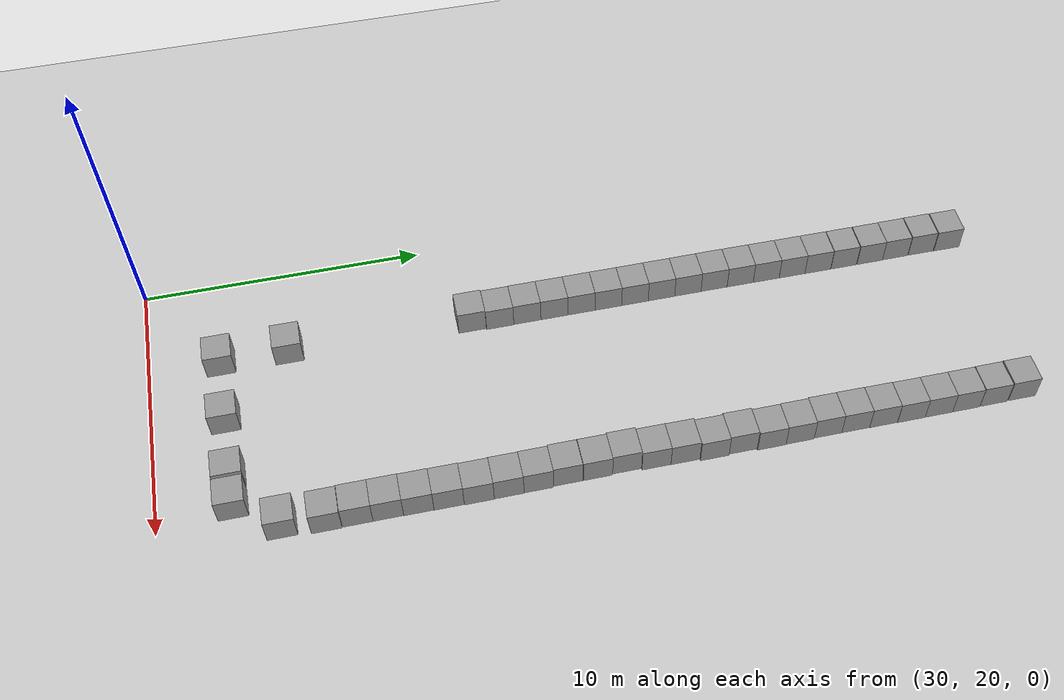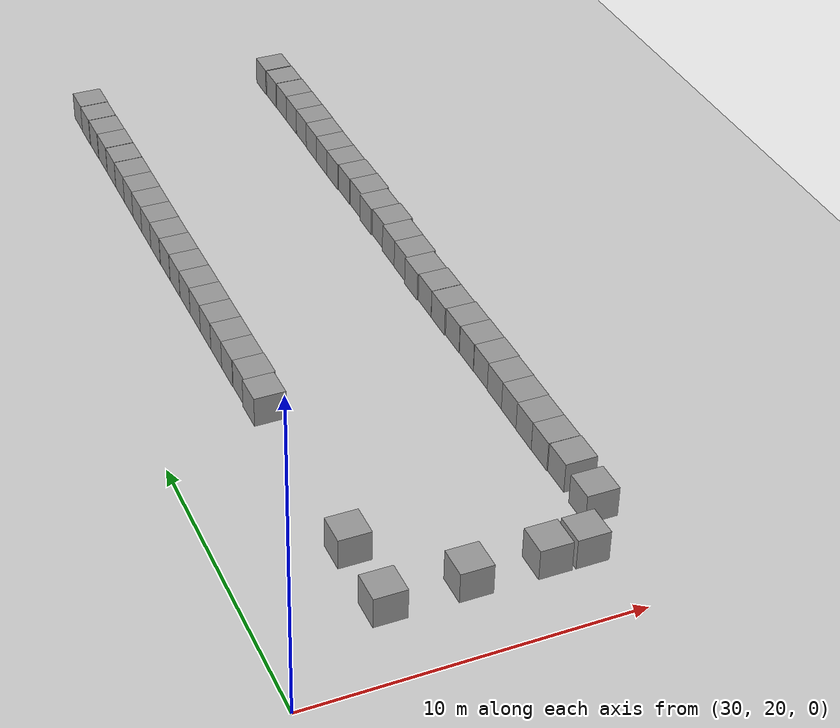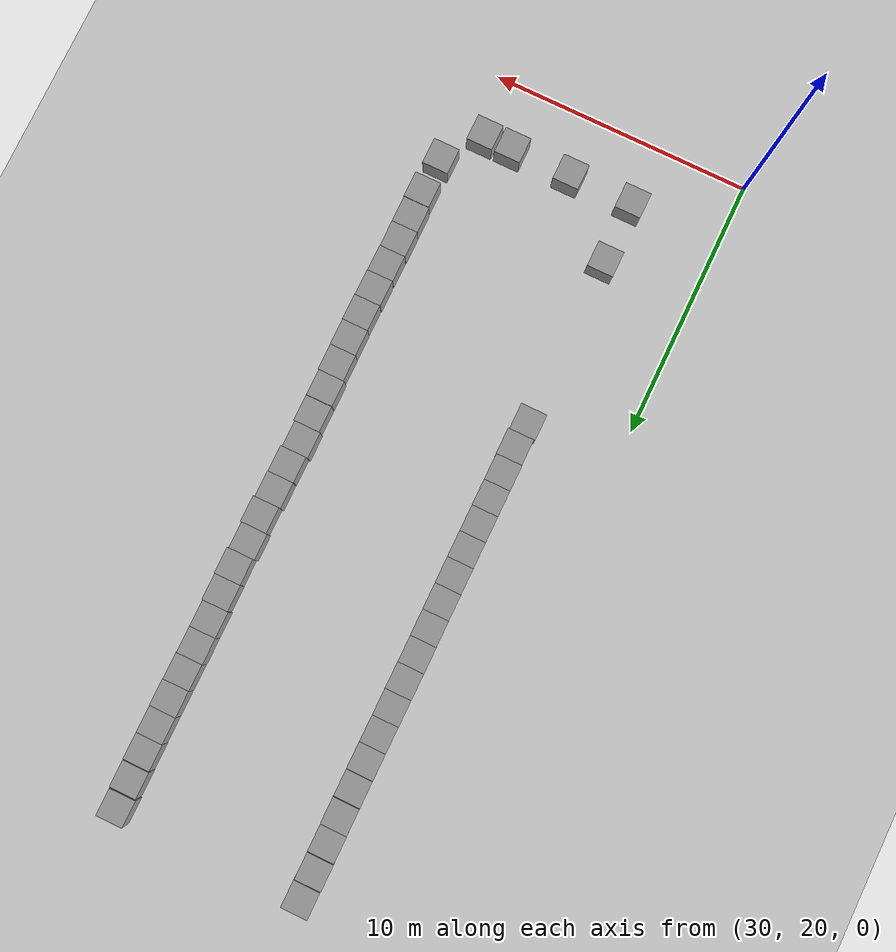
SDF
<sdf version="1.4">
 <world name="default">
  <model name="ground_plane">
   <static>1</static>
   <link name="link">
    <collision name="collision">
     <geometry><plane><normal>0 0 1</normal><size>100 100</size></plane></geometry>
     <surface><friction><ode><mu>100</mu><mu2>50</mu2></ode></friction></surface>
    </collision>
    <visual name="visual">
     <cast_shadows>0</cast_shadows>
     <geometry><plane><normal>0 0 1</normal><size>100 100</size></plane></geometry>
     <material>
      <script><uri>file://media/materials/scripts/gazebo.material</uri><name>Gazebo/Grey</name></script>
     </material>
    </visual>
    <velocity_decay><linear>0</linear><angular>0</angular></velocity_decay>
   </link>
  </model>
  <model name="unit_box_96">
   <pose>33.5045 49.5049 0.5 0 -0 0</pose>
   <link name="link">
    <inertial>
     <mass>1</mass>
     <inertia><ixx>1</ixx><ixy>0</ixy><ixz>0</ixz><iyy>1</iyy><iyz>0</iyz><izz>1</izz></inertia>
    </inertial>
    <collision name="collision"><geometry><box><size>1 1 1</size></box></geometry></collision>
    <visual name="visual">
     <geometry><box><size>1 1 1</size></box></geometry>
     <material>
      <script><uri>file://media/materials/scripts/gazebo.material</uri><name>Gazebo/Grey</name></script>
     </material>
    </visual>
    <velocity_decay><linear>0</linear><angular>0</angular></velocity_decay>
   </link>
   <static>0</static>
  </model>
  <model name="unit_box_97">
   <pose>40.5027 49.5047 0.5 0 -0 0</pose>
   <link name="link">
    <inertial>
     <mass>1</mass>
     <inertia><ixx>1</ixx><ixy>0</ixy><ixz>0</ixz><iyy>1</iyy><iyz>0</iyz><izz>1</izz></inertia>
    </inertial>
    <collision name="collision"><geometry><box><size>1 1 1</size></box></geometry></collision>
    <visual name="visual">
     <geometry><box><size>1 1 1</size></box></geometry>
     <material>
      <script><uri>file://media/materials/scripts/gazebo.material</uri><name>Gazebo/Grey</name></script>
     </material>
    </visual>
    <velocity_decay><linear>0</linear><angular>0</angular></velocity_decay>
   </link>
   <static>0</static>
  </model>
  <model name="unit_box_98">
   <pose>33.501 22.5015 0.5 0 -0 0</pose>
   <link name="link">
    <inertial>
     <mass>1</mass>
     <inertia><ixx>1</ixx><ixy>0</ixy><ixz>0</ixz><iyy>1</iyy><iyz>0</iyz><izz>1</izz></inertia>
    </inertial>
    <collision name="collision"><geometry><box><size>1 1 1</size></box></geometry></collision>
    <visual name="visual">
     <geometry><box><size>1 1 1</size></box></geometry>
     <material>
      <script><uri>file://media/materials/scripts/gazebo.material</uri><name>Gazebo/Grey</name></script>
     </material>
    </visual>
    <velocity_decay><linear>0</linear><angular>0</angular></velocity_decay>
   </link>
   <static>0</static>
  </model>
  <model name="unit_box_100">
   <pose>39.3953 22.5045 0.5 0 -0 0</pose>
   <link name="link">
    <inertial>
     <mass>1</mass>
     <inertia><ixx>1</ixx><ixy>0</ixy><ixz>0</ixz><iyy>1</iyy><iyz>0</iyz><izz>1</izz></inertia>
    </inertial>
    <collision name="collision"><geometry><box><size>1 1 1</size></box></geometry></collision>
    <visual name="visual">
     <geometry><box><size>1 1 1</size></box></geometry>
     <material>
      <script><uri>file://media/materials/scripts/gazebo.material</uri><name>Gazebo/Grey</name></script>
     </material>
    </visual>
    <velocity_decay><linear>0</linear><angular>0</angular></velocity_decay>
   </link>
   <static>0</static>
  </model>
  <model name="unit_box_101">
   <pose>38.2849 22.5064 0.5 0 -0 0</pose>
   <link name="link">
    <inertial>
     <mass>1</mass>
     <inertia><ixx>1</ixx><ixy>0</ixy><ixz>0</ixz><iyy>1</iyy><iyz>0</iyz><izz>1</izz></inertia>
    </inertial>
    <collision name="collision"><geometry><box><size>1 1 1</size></box></geometry></collision>
    <visual name="visual">
     <geometry><box><size>1 1 1</size></box></geometry>
     <material>
      <script><uri>file://media/materials/scripts/gazebo.material</uri><name>Gazebo/Grey</name></script>
     </material>
    </visual>
    <velocity_decay><linear>0</linear><angular>0</angular></velocity_decay>
   </link>
   <static>0</static>
  </model>
  <model name="unit_box_103">
   <pose>35.9628 22.5022 0.5 0 -0 0</pose>
   <link name="link">
    <inertial>
     <mass>1</mass>
     <inertia><ixx>1</ixx><ixy>0</ixy><ixz>0</ixz><iyy>1</iyy><iyz>0</iyz><izz>1</izz></inertia>
    </inertial>
    <collision name="collision"><geometry><box><size>1 1 1</size></box></geometry></collision>
    <visual name="visual">
     <geometry><box><size>1 1 1</size></box></geometry>
     <material>
      <script><uri>file://media/materials/scripts/gazebo.material</uri><name>Gazebo/Grey</name></script>
     </material>
    </visual>
    <velocity_decay><linear>0</linear><angular>0</angular></velocity_decay>
   </link>
   <static>0</static>
  </model>
  <model name="unit_box_107">
   <pose>33.4934 48.4846 0.5 0 -0 0</pose>
   <link name="link">
    <inertial>
     <mass>1</mass>
     <inertia><ixx>1</ixx><ixy>0</ixy><ixz>0</ixz><iyy>1</iyy><iyz>0</iyz><izz>1</izz></inertia>
    </inertial>
    <collision name="collision"><geometry><box><size>1 1 1</size></box></geometry></collision>
    <visual name="visual">
     <geometry><box><size>1 1 1</size></box></geometry>
     <material>
      <script><uri>file://media/materials/scripts/gazebo.material</uri><name>Gazebo/Grey</name></script>
     </material>
    </visual>
    <velocity_decay><linear>0</linear><angular>0</angular></velocity_decay>
   </link>
   <static>0</static>
  </model>
  <model name="unit_box_108">
   <pose>33.5012 47.465 0.5 0 -0 0</pose>
   <link name="link">
    <inertial>
     <mass>1</mass>
     <inertia><ixx>1</ixx><ixy>0</ixy><ixz>0</ixz><iyy>1</iyy><iyz>0</iyz><izz>1</izz></inertia>
    </inertial>
    <collision name="collision"><geometry><box><size>1 1 1</size></box></geometry></collision>
    <visual name="visual">
     <geometry><box><size>1 1 1</size></box></geometry>
     <material>
      <script><uri>file://media/materials/scripts/gazebo.material</uri><name>Gazebo/Grey</name></script>
     </material>
    </visual>
    <velocity_decay><linear>0</linear><angular>0</angular></velocity_decay>
   </link>
   <static>0</static>
  </model>
  <model name="unit_box_109">
   <pose>33.5117 46.463 0.5 0 -0 0</pose>
   <link name="link">
    <inertial>
     <mass>1</mass>
     <inertia><ixx>1</ixx><ixy>0</ixy><ixz>0</ixz><iyy>1</iyy><iyz>0</iyz><izz>1</izz></inertia>
    </inertial>
    <collision name="collision"><geometry><box><size>1 1 1</size></box></geometry></collision>
    <visual name="visual">
     <geometry><box><size>1 1 1</size></box></geometry>
     <material>
      <script><uri>file://media/materials/scripts/gazebo.material</uri><name>Gazebo/Grey</name></script>
     </material>
    </visual>
    <velocity_decay><linear>0</linear><angular>0</angular></velocity_decay>
   </link>
   <static>0</static>
  </model>
  <model name="unit_box_110">
   <pose>33.5118 45.44 0.5 0 -0 0</pose>
   <link name="link">
    <inertial>
     <mass>1</mass>
     <inertia><ixx>1</ixx><ixy>0</ixy><ixz>0</ixz><iyy>1</iyy><iyz>0</iyz><izz>1</izz></inertia>
    </inertial>
    <collision name="collision"><geometry><box><size>1 1 1</size></box></geometry></collision>
    <visual name="visual">
     <geometry><box><size>1 1 1</size></box></geometry>
     <material>
      <script><uri>file://media/materials/scripts/gazebo.material</uri><name>Gazebo/Grey</name></script>
     </material>
    </visual>
    <velocity_decay><linear>0</linear><angular>0</angular></velocity_decay>
   </link>
   <static>0</static>
  </model>
  <model name="unit_box_111">
   <pose>33.5126 44.4266 0.5 0 0 -3.6e-05</pose>
   <link name="link">
    <inertial>
     <mass>1</mass>
     <inertia><ixx>1</ixx><ixy>0</ixy><ixz>0</ixz><iyy>1</iyy><iyz>0</iyz><izz>1</izz></inertia>
    </inertial>
    <collision name="collision"><geometry><box><size>1 1 1</size></box></geometry></collision>
    <visual name="visual">
     <geometry><box><size>1 1 1</size></box></geometry>
     <material>
      <script><uri>file://media/materials/scripts/gazebo.material</uri><name>Gazebo/Grey</name></script>
     </material>
    </visual>
    <velocity_decay><linear>0</linear><angular>0</angular></velocity_decay>
   </link>
   <static>0</static>
  </model>
  <model name="unit_box_112">
   <pose>33.5104 43.4266 0.5 0 0 -6e-06</pose>
   <link name="link">
    <inertial>
     <mass>1</mass>
     <inertia><ixx>1</ixx><ixy>0</ixy><ixz>0</ixz><iyy>1</iyy><iyz>0</iyz><izz>1</izz></inertia>
    </inertial>
    <collision name="collision"><geometry><box><size>1 1 1</size></box></geometry></collision>
    <visual name="visual">
     <geometry><box><size>1 1 1</size></box></geometry>
     <material>
      <script><uri>file://media/materials/scripts/gazebo.material</uri><name>Gazebo/Grey</name></script>
     </material>
    </visual>
    <velocity_decay><linear>0</linear><angular>0</angular></velocity_decay>
   </link>
   <static>0</static>
  </model>
  <model name="unit_box_113">
   <pose>33.5063 42.4266 0.5 0 -0 2e-06</pose>
   <link name="link">
    <inertial>
     <mass>1</mass>
     <inertia><ixx>1</ixx><ixy>0</ixy><ixz>0</ixz><iyy>1</iyy><iyz>0</iyz><izz>1</izz></inertia>
    </inertial>
    <collision name="collision"><geometry><box><size>1 1 1</size></box></geometry></collision>
    <visual name="visual">
     <geometry><box><size>1 1 1</size></box></geometry>
     <material>
      <script><uri>file://media/materials/scripts/gazebo.material</uri><name>Gazebo/Grey</name></script>
     </material>
    </visual>
    <velocity_decay><linear>0</linear><angular>0</angular></velocity_decay>
   </link>
   <static>0</static>
  </model>
  <model name="unit_box_114">
   <pose>33.5046 41.4265 0.5 0 -0 2.8e-05</pose>
   <link name="link">
    <inertial>
     <mass>1</mass>
     <inertia><ixx>1</ixx><ixy>0</ixy><ixz>0</ixz><iyy>1</iyy><iyz>0</iyz><izz>1</izz></inertia>
    </inertial>
    <collision name="collision"><geometry><box><size>1 1 1</size></box></geometry></collision>
    <visual name="visual">
     <geometry><box><size>1 1 1</size></box></geometry>
     <material>
      <script><uri>file://media/materials/scripts/gazebo.material</uri><name>Gazebo/Grey</name></script>
     </material>
    </visual>
    <velocity_decay><linear>0</linear><angular>0</angular></velocity_decay>
   </link>
   <static>0</static>
  </model>
  <model name="unit_box_115">
   <pose>33.5012 40.4265 0.5 0 -0 5.9e-05</pose>
   <link name="link">
    <inertial>
     <mass>1</mass>
     <inertia><ixx>1</ixx><ixy>0</ixy><ixz>0</ixz><iyy>1</iyy><iyz>0</iyz><izz>1</izz></inertia>
    </inertial>
    <collision name="collision"><geometry><box><size>1 1 1</size></box></geometry></collision>
    <visual name="visual">
     <geometry><box><size>1 1 1</size></box></geometry>
     <material>
      <script><uri>file://media/materials/scripts/gazebo.material</uri><name>Gazebo/Grey</name></script>
     </material>
    </visual>
    <velocity_decay><linear>0</linear><angular>0</angular></velocity_decay>
   </link>
   <static>0</static>
  </model>
  <model name="unit_box_116">
   <pose>33.5075 39.4265 0.5 0 -0 5.4e-05</pose>
   <link name="link">
    <inertial>
     <mass>1</mass>
     <inertia><ixx>1</ixx><ixy>0</ixy><ixz>0</ixz><iyy>1</iyy><iyz>0</iyz><izz>1</izz></inertia>
    </inertial>
    <collision name="collision"><geometry><box><size>1 1 1</size></box></geometry></collision>
    <visual name="visual">
     <geometry><box><size>1 1 1</size></box></geometry>
     <material>
      <script><uri>file://media/materials/scripts/gazebo.material</uri><name>Gazebo/Grey</name></script>
     </material>
    </visual>
    <velocity_decay><linear>0</linear><angular>0</angular></velocity_decay>
   </link>
   <static>0</static>
  </model>
  <model name="unit_box_117">
   <pose>33.5119 38.4265 0.5 0 -0 5.7e-05</pose>
   <link name="link">
    <inertial>
     <mass>1</mass>
     <inertia><ixx>1</ixx><ixy>0</ixy><ixz>0</ixz><iyy>1</iyy><iyz>0</iyz><izz>1</izz></inertia>
    </inertial>
    <collision name="collision"><geometry><box><size>1 1 1</size></box></geometry></collision>
    <visual name="visual">
     <geometry><box><size>1 1 1</size></box></geometry>
     <material>
      <script><uri>file://media/materials/scripts/gazebo.material</uri><name>Gazebo/Grey</name></script>
     </material>
    </visual>
    <velocity_decay><linear>0</linear><angular>0</angular></velocity_decay>
   </link>
   <static>0</static>
  </model>
  <model name="unit_box_118">
   <pose>33.5168 37.4265 0.5 0 -0 5.7e-05</pose>
   <link name="link">
    <inertial>
     <mass>1</mass>
     <inertia><ixx>1</ixx><ixy>0</ixy><ixz>0</ixz><iyy>1</iyy><iyz>0</iyz><izz>1</izz></inertia>
    </inertial>
    <collision name="collision"><geometry><box><size>1 1 1</size></box></geometry></collision>
    <visual name="visual">
     <geometry><box><size>1 1 1</size></box></geometry>
     <material>
      <script><uri>file://media/materials/scripts/gazebo.material</uri><name>Gazebo/Grey</name></script>
     </material>
    </visual>
    <velocity_decay><linear>0</linear><angular>0</angular></velocity_decay>
   </link>
   <static>0</static>
  </model>
  <model name="unit_box_119">
   <pose>33.5186 36.4265 0.5 0 -0 5.8e-05</pose>
   <link name="link">
    <inertial>
     <mass>1</mass>
     <inertia><ixx>1</ixx><ixy>0</ixy><ixz>0</ixz><iyy>1</iyy><iyz>0</iyz><izz>1</izz></inertia>
    </inertial>
    <collision name="collision"><geometry><box><size>1 1 1</size></box></geometry></collision>
    <visual name="visual">
     <geometry><box><size>1 1 1</size></box></geometry>
     <material>
      <script><uri>file://media/materials/scripts/gazebo.material</uri><name>Gazebo/Grey</name></script>
     </material>
    </visual>
    <velocity_decay><linear>0</linear><angular>0</angular></velocity_decay>
   </link>
   <static>0</static>
  </model>
  <model name="unit_box_120">
   <pose>33.5183 35.4265 0.5 0 -0 4.7e-05</pose>
   <link name="link">
    <inertial>
     <mass>1</mass>
     <inertia><ixx>1</ixx><ixy>0</ixy><ixz>0</ixz><iyy>1</iyy><iyz>0</iyz><izz>1</izz></inertia>
    </inertial>
    <collision name="collision"><geometry><box><size>1 1 1</size></box></geometry></collision>
    <visual name="visual">
     <geometry><box><size>1 1 1</size></box></geometry>
     <material>
      <script><uri>file://media/materials/scripts/gazebo.material</uri><name>Gazebo/Grey</name></script>
     </material>
    </visual>
    <velocity_decay><linear>0</linear><angular>0</angular></velocity_decay>
   </link>
   <static>0</static>
  </model>
  <model name="unit_box_121">
   <pose>33.5208 34.4264 0.5 0 -0 1.3e-05</pose>
   <link name="link">
    <inertial>
     <mass>1</mass>
     <inertia><ixx>1</ixx><ixy>0</ixy><ixz>0</ixz><iyy>1</iyy><iyz>0</iyz><izz>1</izz></inertia>
    </inertial>
    <collision name="collision"><geometry><box><size>1 1 1</size></box></geometry></collision>
    <visual name="visual">
     <geometry><box><size>1 1 1</size></box></geometry>
     <material>
      <script><uri>file://media/materials/scripts/gazebo.material</uri><name>Gazebo/Grey</name></script>
     </material>
    </visual>
    <velocity_decay><linear>0</linear><angular>0</angular></velocity_decay>
   </link>
   <static>0</static>
  </model>
  <model name="unit_box_122">
   <pose>33.5203 33.4264 0.5 0 -0 1e-06</pose>
   <link name="link">
    <inertial>
     <mass>1</mass>
     <inertia><ixx>1</ixx><ixy>0</ixy><ixz>0</ixz><iyy>1</iyy><iyz>0</iyz><izz>1</izz></inertia>
    </inertial>
    <collision name="collision"><geometry><box><size>1 1 1</size></box></geometry></collision>
    <visual name="visual">
     <geometry><box><size>1 1 1</size></box></geometry>
     <material>
      <script><uri>file://media/materials/scripts/gazebo.material</uri><name>Gazebo/Grey</name></script>
     </material>
    </visual>
    <velocity_decay><linear>0</linear><angular>0</angular></velocity_decay>
   </link>
   <static>0</static>
  </model>
  <model name="unit_box_123">
   <pose>33.5343 32.4264 0.5 0 -0 6e-06</pose>
   <link name="link">
    <inertial>
     <mass>1</mass>
     <inertia><ixx>1</ixx><ixy>0</ixy><ixz>0</ixz><iyy>1</iyy><iyz>0</iyz><izz>1</izz></inertia>
    </inertial>
    <collision name="collision"><geometry><box><size>1 1 1</size></box></geometry></collision>
    <visual name="visual">
     <geometry><box><size>1 1 1</size></box></geometry>
     <material>
      <script><uri>file://media/materials/scripts/gazebo.material</uri><name>Gazebo/Grey</name></script>
     </material>
    </visual>
    <velocity_decay><linear>0</linear><angular>0</angular></velocity_decay>
   </link>
   <static>0</static>
  </model>
  <model name="unit_box_124">
   <pose>33.4872 31.4264 0.5 0 -0 -3e-06</pose>
   <link name="link">
    <inertial>
     <mass>1</mass>
     <inertia><ixx>1</ixx><ixy>0</ixy><ixz>0</ixz><iyy>1</iyy><iyz>0</iyz><izz>1</izz></inertia>
    </inertial>
    <collision name="collision"><geometry><box><size>1 1 1</size></box></geometry></collision>
    <visual name="visual">
     <geometry><box><size>1 1 1</size></box></geometry>
     <material>
      <script><uri>file://media/materials/scripts/gazebo.material</uri><name>Gazebo/Grey</name></script>
     </material>
    </visual>
    <velocity_decay><linear>0</linear><angular>0</angular></velocity_decay>
   </link>
   <static>0</static>
  </model>
  <model name="unit_box_130">
   <pose>33.4872 24.8965 0.5 0 -0 0</pose>
   <link name="link">
    <inertial>
     <mass>1</mass>
     <inertia><ixx>1</ixx><ixy>0</ixy><ixz>0</ixz><iyy>1</iyy><iyz>0</iyz><izz>1</izz></inertia>
    </inertial>
    <collision name="collision"><geometry><box><size>1 1 1</size></box></geometry></collision>
    <visual name="visual">
     <geometry><box><size>1 1 1</size></box></geometry>
     <material>
      <script><uri>file://media/materials/scripts/gazebo.material</uri><name>Gazebo/Grey</name></script>
     </material>
    </visual>
    <velocity_decay><linear>0</linear><angular>0</angular></velocity_decay>
   </link>
   <static>0</static>
  </model>
  <model name="unit_box_132">
   <pose>40.5174 48.4613 0.5 0 -0 0</pose>
   <link name="link">
    <inertial>
     <mass>1</mass>
     <inertia><ixx>1</ixx><ixy>0</ixy><ixz>0</ixz><iyy>1</iyy><iyz>0</iyz><izz>1</izz></inertia>
    </inertial>
    <collision name="collision"><geometry><box><size>1 1 1</size></box></geometry></collision>
    <visual name="visual">
     <geometry><box><size>1 1 1</size></box></geometry>
     <material>
      <script><uri>file://media/materials/scripts/gazebo.material</uri><name>Gazebo/Grey</name></script>
     </material>
    </visual>
    <velocity_decay><linear>0</linear><angular>0</angular></velocity_decay>
   </link>
   <static>0</static>
  </model>
  <model name="unit_box_133">
   <pose>40.5299 47.4437 0.5 0 -0 -0.000325</pose>
   <link name="link">
    <inertial>
     <mass>1</mass>
     <inertia><ixx>1</ixx><ixy>0</ixy><ixz>0</ixz><iyy>1</iyy><iyz>0</iyz><izz>1</izz></inertia>
    </inertial>
    <collision name="collision"><geometry><box><size>1 1 1</size></box></geometry></collision>
    <visual name="visual">
     <geometry><box><size>1 1 1</size></box></geometry>
     <material>
      <script><uri>file://media/materials/scripts/gazebo.material</uri><name>Gazebo/Grey</name></script>
     </material>
    </visual>
    <velocity_decay><linear>0</linear><angular>0</angular></velocity_decay>
   </link>
   <static>0</static>
  </model>
  <model name="unit_box_134">
   <pose>40.5325 46.4437 0.5 0 -0 -0.000369</pose>
   <link name="link">
    <inertial>
     <mass>1</mass>
     <inertia><ixx>1</ixx><ixy>0</ixy><ixz>0</ixz><iyy>1</iyy><iyz>0</iyz><izz>1</izz></inertia>
    </inertial>
    <collision name="collision"><geometry><box><size>1 1 1</size></box></geometry></collision>
    <visual name="visual">
     <geometry><box><size>1 1 1</size></box></geometry>
     <material>
      <script><uri>file://media/materials/scripts/gazebo.material</uri><name>Gazebo/Grey</name></script>
     </material>
    </visual>
    <velocity_decay><linear>0</linear><angular>0</angular></velocity_decay>
   </link>
   <static>0</static>
  </model>
  <model name="unit_box_135">
   <pose>40.5358 45.4437 0.5 -0 -0 -0.00037</pose>
   <link name="link">
    <inertial>
     <mass>1</mass>
     <inertia><ixx>1</ixx><ixy>0</ixy><ixz>0</ixz><iyy>1</iyy><iyz>0</iyz><izz>1</izz></inertia>
    </inertial>
    <collision name="collision"><geometry><box><size>1 1 1</size></box></geometry></collision>
    <visual name="visual">
     <geometry><box><size>1 1 1</size></box></geometry>
     <material>
      <script><uri>file://media/materials/scripts/gazebo.material</uri><name>Gazebo/Grey</name></script>
     </material>
    </visual>
    <velocity_decay><linear>0</linear><angular>0</angular></velocity_decay>
   </link>
   <static>0</static>
  </model>
  <model name="unit_box_136">
   <pose>40.5245 44.4437 0.5 -0 -0 -0.000372</pose>
   <link name="link">
    <inertial>
     <mass>1</mass>
     <inertia><ixx>1</ixx><ixy>0</ixy><ixz>0</ixz><iyy>1</iyy><iyz>0</iyz><izz>1</izz></inertia>
    </inertial>
    <collision name="collision"><geometry><box><size>1 1 1</size></box></geometry></collision>
    <visual name="visual">
     <geometry><box><size>1 1 1</size></box></geometry>
     <material>
      <script><uri>file://media/materials/scripts/gazebo.material</uri><name>Gazebo/Grey</name></script>
     </material>
    </visual>
    <velocity_decay><linear>0</linear><angular>0</angular></velocity_decay>
   </link>
   <static>0</static>
  </model>
  <model name="unit_box_137">
   <pose>40.517 43.4437 0.5 0 -0 -0.000375</pose>
   <link name="link">
    <inertial>
     <mass>1</mass>
     <inertia><ixx>1</ixx><ixy>0</ixy><ixz>0</ixz><iyy>1</iyy><iyz>0</iyz><izz>1</izz></inertia>
    </inertial>
    <collision name="collision"><geometry><box><size>1 1 1</size></box></geometry></collision>
    <visual name="visual">
     <geometry><box><size>1 1 1</size></box></geometry>
     <material>
      <script><uri>file://media/materials/scripts/gazebo.material</uri><name>Gazebo/Grey</name></script>
     </material>
    </visual>
    <velocity_decay><linear>0</linear><angular>0</angular></velocity_decay>
   </link>
   <static>0</static>
  </model>
  <model name="unit_box_138">
   <pose>40.5189 42.4437 0.5 0 0 -0.000375</pose>
   <link name="link">
    <inertial>
     <mass>1</mass>
     <inertia><ixx>1</ixx><ixy>0</ixy><ixz>0</ixz><iyy>1</iyy><iyz>0</iyz><izz>1</izz></inertia>
    </inertial>
    <collision name="collision"><geometry><box><size>1 1 1</size></box></geometry></collision>
    <visual name="visual">
     <geometry><box><size>1 1 1</size></box></geometry>
     <material>
      <script><uri>file://media/materials/scripts/gazebo.material</uri><name>Gazebo/Grey</name></script>
     </material>
    </visual>
    <velocity_decay><linear>0</linear><angular>0</angular></velocity_decay>
   </link>
   <static>0</static>
  </model>
  <model name="unit_box_139">
   <pose>40.5496 41.4437 0.5 0 0 -0.000382</pose>
   <link name="link">
    <inertial>
     <mass>1</mass>
     <inertia><ixx>1</ixx><ixy>0</ixy><ixz>0</ixz><iyy>1</iyy><iyz>0</iyz><izz>1</izz></inertia>
    </inertial>
    <collision name="collision"><geometry><box><size>1 1 1</size></box></geometry></collision>
    <visual name="visual">
     <geometry><box><size>1 1 1</size></box></geometry>
     <material>
      <script><uri>file://media/materials/scripts/gazebo.material</uri><name>Gazebo/Grey</name></script>
     </material>
    </visual>
    <velocity_decay><linear>0</linear><angular>0</angular></velocity_decay>
   </link>
   <static>0</static>
  </model>
  <model name="unit_box_140">
   <pose>40.5659 40.4437 0.5 0 0 -0.000398</pose>
   <link name="link">
    <inertial>
     <mass>1</mass>
     <inertia><ixx>1</ixx><ixy>0</ixy><ixz>0</ixz><iyy>1</iyy><iyz>0</iyz><izz>1</izz></inertia>
    </inertial>
    <collision name="collision"><geometry><box><size>1 1 1</size></box></geometry></collision>
    <visual name="visual">
     <geometry><box><size>1 1 1</size></box></geometry>
     <material>
      <script><uri>file://media/materials/scripts/gazebo.material</uri><name>Gazebo/Grey</name></script>
     </material>
    </visual>
    <velocity_decay><linear>0</linear><angular>0</angular></velocity_decay>
   </link>
   <static>0</static>
  </model>
  <model name="unit_box_141">
   <pose>40.5117 39.4437 0.5 0 0 -0.000402</pose>
   <link name="link">
    <inertial>
     <mass>1</mass>
     <inertia><ixx>1</ixx><ixy>0</ixy><ixz>0</ixz><iyy>1</iyy><iyz>0</iyz><izz>1</izz></inertia>
    </inertial>
    <collision name="collision"><geometry><box><size>1 1 1</size></box></geometry></collision>
    <visual name="visual">
     <geometry><box><size>1 1 1</size></box></geometry>
     <material>
      <script><uri>file://media/materials/scripts/gazebo.material</uri><name>Gazebo/Grey</name></script>
     </material>
    </visual>
    <velocity_decay><linear>0</linear><angular>0</angular></velocity_decay>
   </link>
   <static>0</static>
  </model>
  <model name="unit_box_142">
   <pose>40.5549 38.4436 0.5 -0 -0 -0.000479</pose>
   <link name="link">
    <inertial>
     <mass>1</mass>
     <inertia><ixx>1</ixx><ixy>0</ixy><ixz>0</ixz><iyy>1</iyy><iyz>0</iyz><izz>1</izz></inertia>
    </inertial>
    <collision name="collision"><geometry><box><size>1 1 1</size></box></geometry></collision>
    <visual name="visual">
     <geometry><box><size>1 1 1</size></box></geometry>
     <material>
      <script><uri>file://media/materials/scripts/gazebo.material</uri><name>Gazebo/Grey</name></script>
     </material>
    </visual>
    <velocity_decay><linear>0</linear><angular>0</angular></velocity_decay>
   </link>
   <static>0</static>
  </model>
  <model name="unit_box_143">
   <pose>40.4915 37.4436 0.5 0 0 -0.000487</pose>
   <link name="link">
    <inertial>
     <mass>1</mass>
     <inertia><ixx>1</ixx><ixy>0</ixy><ixz>0</ixz><iyy>1</iyy><iyz>0</iyz><izz>1</izz></inertia>
    </inertial>
    <collision name="collision"><geometry><box><size>1 1 1</size></box></geometry></collision>
    <visual name="visual">
     <geometry><box><size>1 1 1</size></box></geometry>
     <material>
      <script><uri>file://media/materials/scripts/gazebo.material</uri><name>Gazebo/Grey</name></script>
     </material>
    </visual>
    <velocity_decay><linear>0</linear><angular>0</angular></velocity_decay>
   </link>
   <static>0</static>
  </model>
  <model name="unit_box_144">
   <pose>40.4837 36.4436 0.5 0 0 -0.000488</pose>
   <link name="link">
    <inertial>
     <mass>1</mass>
     <inertia><ixx>1</ixx><ixy>0</ixy><ixz>0</ixz><iyy>1</iyy><iyz>0</iyz><izz>1</izz></inertia>
    </inertial>
    <collision name="collision"><geometry><box><size>1 1 1</size></box></geometry></collision>
    <visual name="visual">
     <geometry><box><size>1 1 1</size></box></geometry>
     <material>
      <script><uri>file://media/materials/scripts/gazebo.material</uri><name>Gazebo/Grey</name></script>
     </material>
    </visual>
    <velocity_decay><linear>0</linear><angular>0</angular></velocity_decay>
   </link>
   <static>0</static>
  </model>
  <model name="unit_box_145">
   <pose>40.4218 35.4437 0.5 0 0 -0.000522</pose>
   <link name="link">
    <inertial>
     <mass>1</mass>
     <inertia><ixx>1</ixx><ixy>0</ixy><ixz>0</ixz><iyy>1</iyy><iyz>0</iyz><izz>1</izz></inertia>
    </inertial>
    <collision name="collision"><geometry><box><size>1 1 1</size></box></geometry></collision>
    <visual name="visual">
     <geometry><box><size>1 1 1</size></box></geometry>
     <material>
      <script><uri>file://media/materials/scripts/gazebo.material</uri><name>Gazebo/Grey</name></script>
     </material>
    </visual>
    <velocity_decay><linear>0</linear><angular>0</angular></velocity_decay>
   </link>
   <static>0</static>
  </model>
  <model name="unit_box_146">
   <pose>40.4615 34.4436 0.5 -0 -0 -0.000508</pose>
   <link name="link">
    <inertial>
     <mass>1</mass>
     <inertia><ixx>1</ixx><ixy>0</ixy><ixz>0</ixz><iyy>1</iyy><iyz>0</iyz><izz>1</izz></inertia>
    </inertial>
    <collision name="collision"><geometry><box><size>1 1 1</size></box></geometry></collision>
    <visual name="visual">
     <geometry><box><size>1 1 1</size></box></geometry>
     <material>
      <script><uri>file://media/materials/scripts/gazebo.material</uri><name>Gazebo/Grey</name></script>
     </material>
    </visual>
    <velocity_decay><linear>0</linear><angular>0</angular></velocity_decay>
   </link>
   <static>0</static>
  </model>
  <model name="unit_box_147">
   <pose>40.4616 33.4321 0.5 0 -0 0.000289</pose>
   <link name="link">
    <inertial>
     <mass>1</mass>
     <inertia><ixx>1</ixx><ixy>0</ixy><ixz>0</ixz><iyy>1</iyy><iyz>0</iyz><izz>1</izz></inertia>
    </inertial>
    <collision name="collision"><geometry><box><size>1 1 1</size></box></geometry></collision>
    <visual name="visual">
     <geometry><box><size>1 1 1</size></box></geometry>
     <material>
      <script><uri>file://media/materials/scripts/gazebo.material</uri><name>Gazebo/Grey</name></script>
     </material>
    </visual>
    <velocity_decay><linear>0</linear><angular>0</angular></velocity_decay>
   </link>
   <static>0</static>
  </model>
  <model name="unit_box_148">
   <pose>40.5007 32.4321 0.5 0 -0 0.000263</pose>
   <link name="link">
    <inertial>
     <mass>1</mass>
     <inertia><ixx>1</ixx><ixy>0</ixy><ixz>0</ixz><iyy>1</iyy><iyz>0</iyz><izz>1</izz></inertia>
    </inertial>
    <collision name="collision"><geometry><box><size>1 1 1</size></box></geometry></collision>
    <visual name="visual">
     <geometry><box><size>1 1 1</size></box></geometry>
     <material>
      <script><uri>file://media/materials/scripts/gazebo.material</uri><name>Gazebo/Grey</name></script>
     </material>
    </visual>
    <velocity_decay><linear>0</linear><angular>0</angular></velocity_decay>
   </link>
   <static>0</static>
  </model>
  <model name="unit_box_149">
   <pose>40.5131 31.4321 0.5 0 -0 0.000265</pose>
   <link name="link">
    <inertial>
     <mass>1</mass>
     <inertia><ixx>1</ixx><ixy>0</ixy><ixz>0</ixz><iyy>1</iyy><iyz>0</iyz><izz>1</izz></inertia>
    </inertial>
    <collision name="collision"><geometry><box><size>1 1 1</size></box></geometry></collision>
    <visual name="visual">
     <geometry><box><size>1 1 1</size></box></geometry>
     <material>
      <script><uri>file://media/materials/scripts/gazebo.material</uri><name>Gazebo/Grey</name></script>
     </material>
    </visual>
    <velocity_decay><linear>0</linear><angular>0</angular></velocity_decay>
   </link>
   <static>0</static>
  </model>
  <model name="unit_box_150">
   <pose>40.525 30.4319 0.5 1e-06 -6.46235e-27 3.2e-05</pose>
   <link name="link">
    <inertial>
     <mass>1</mass>
     <inertia><ixx>1</ixx><ixy>0</ixy><ixz>0</ixz><iyy>1</iyy><iyz>0</iyz><izz>1</izz></inertia>
    </inertial>
    <collision name="collision"><geometry><box><size>1 1 1</size></box></geometry></collision>
    <visual name="visual">
     <geometry><box><size>1 1 1</size></box></geometry>
     <material>
      <script><uri>file://media/materials/scripts/gazebo.material</uri><name>Gazebo/Grey</name></script>
     </material>
    </visual>
    <velocity_decay><linear>0</linear><angular>0</angular></velocity_decay>
   </link>
   <static>0</static>
  </model>
  <model name="unit_box_151">
   <pose>40.5084 29.4319 0.5 0 0 -4.5e-05</pose>
   <link name="link">
    <inertial>
     <mass>1</mass>
     <inertia><ixx>1</ixx><ixy>0</ixy><ixz>0</ixz><iyy>1</iyy><iyz>0</iyz><izz>1</izz></inertia>
    </inertial>
    <collision name="collision"><geometry><box><size>1 1 1</size></box></geometry></collision>
    <visual name="visual">
     <geometry><box><size>1 1 1</size></box></geometry>
     <material>
      <script><uri>file://media/materials/scripts/gazebo.material</uri><name>Gazebo/Grey</name></script>
     </material>
    </visual>
    <velocity_decay><linear>0</linear><angular>0</angular></velocity_decay>
   </link>
   <static>0</static>
  </model>
  <model name="unit_box_152">
   <pose>40.4988 28.4319 0.5 0 0 -3.4e-05</pose>
   <link name="link">
    <inertial>
     <mass>1</mass>
     <inertia><ixx>1</ixx><ixy>0</ixy><ixz>0</ixz><iyy>1</iyy><iyz>0</iyz><izz>1</izz></inertia>
    </inertial>
    <collision name="collision"><geometry><box><size>1 1 1</size></box></geometry></collision>
    <visual name="visual">
     <geometry><box><size>1 1 1</size></box></geometry>
     <material>
      <script><uri>file://media/materials/scripts/gazebo.material</uri><name>Gazebo/Grey</name></script>
     </material>
    </visual>
    <velocity_decay><linear>0</linear><angular>0</angular></velocity_decay>
   </link>
   <static>0</static>
  </model>
  <model name="unit_box_153">
   <pose>40.4877 27.4318 0.5 0 0 -2.7e-05</pose>
   <link name="link">
    <inertial>
     <mass>1</mass>
     <inertia><ixx>1</ixx><ixy>0</ixy><ixz>0</ixz><iyy>1</iyy><iyz>0</iyz><izz>1</izz></inertia>
    </inertial>
    <collision name="collision"><geometry><box><size>1 1 1</size></box></geometry></collision>
    <visual name="visual">
     <geometry><box><size>1 1 1</size></box></geometry>
     <material>
      <script><uri>file://media/materials/scripts/gazebo.material</uri><name>Gazebo/Grey</name></script>
     </material>
    </visual>
    <velocity_decay><linear>0</linear><angular>0</angular></velocity_decay>
   </link>
   <static>0</static>
  </model>
  <model name="unit_box_154">
   <pose>40.4897 26.4318 0.5 0 -0 1.6e-05</pose>
   <link name="link">
    <inertial>
     <mass>1</mass>
     <inertia><ixx>1</ixx><ixy>0</ixy><ixz>0</ixz><iyy>1</iyy><iyz>0</iyz><izz>1</izz></inertia>
    </inertial>
    <collision name="collision"><geometry><box><size>1 1 1</size></box></geometry></collision>
    <visual name="visual">
     <geometry><box><size>1 1 1</size></box></geometry>
     <material>
      <script><uri>file://media/materials/scripts/gazebo.material</uri><name>Gazebo/Grey</name></script>
     </material>
    </visual>
    <velocity_decay><linear>0</linear><angular>0</angular></velocity_decay>
   </link>
   <static>0</static>
  </model>
  <model name="unit_box_155">
   <pose>40.5136 25.4224 0.5 0 -0 0</pose>
   <link name="link">
    <inertial>
     <mass>1</mass>
     <inertia><ixx>1</ixx><ixy>0</ixy><ixz>0</ixz><iyy>1</iyy><iyz>0</iyz><izz>1</izz></inertia>
    </inertial>
    <collision name="collision"><geometry><box><size>1 1 1</size></box></geometry></collision>
    <visual name="visual">
     <geometry><box><size>1 1 1</size></box></geometry>
     <material>
      <script><uri>file://media/materials/scripts/gazebo.material</uri><name>Gazebo/Grey</name></script>
     </material>
    </visual>
    <velocity_decay><linear>0</linear><angular>0</angular></velocity_decay>
   </link>
   <static>0</static>
  </model>
  <model name="unit_box_156">
   <pose>40.452 24 0.5 0 -0 0</pose>
   <link name="link">
    <inertial>
     <mass>1</mass>
     <inertia><ixx>1</ixx><ixy>0</ixy><ixz>0</ixz><iyy>1</iyy><iyz>0</iyz><izz>1</izz></inertia>
    </inertial>
    <collision name="collision"><geometry><box><size>1 1 1</size></box></geometry></collision>
    <visual name="visual">
     <geometry><box><size>1 1 1</size></box></geometry>
     <material>
      <script><uri>file://media/materials/scripts/gazebo.material</uri><name>Gazebo/Grey</name></script>
     </material>
    </visual>
    <velocity_decay><linear>0</linear><angular>0</angular></velocity_decay>
   </link>
   <static>0</static>
  </model>
 </world>
</sdf>
